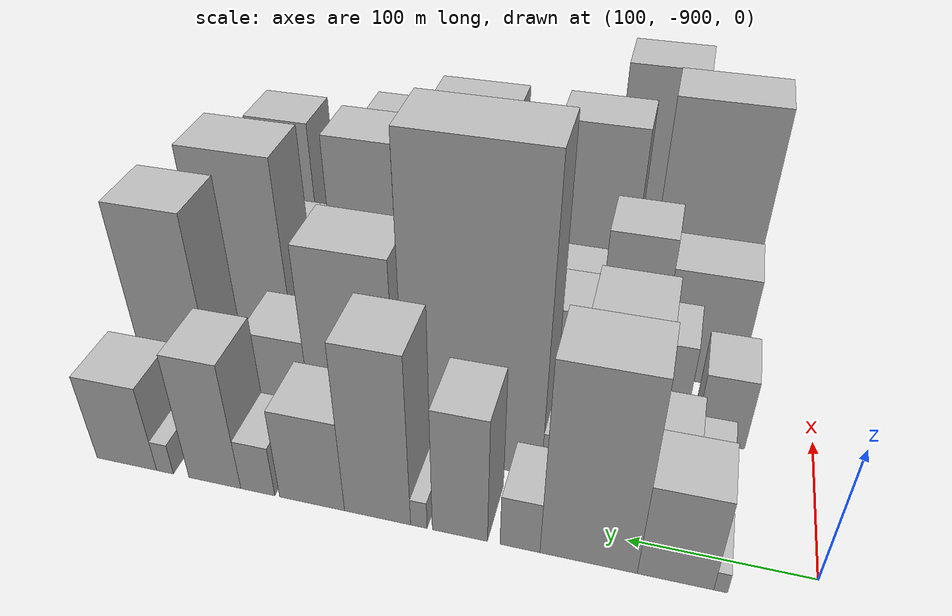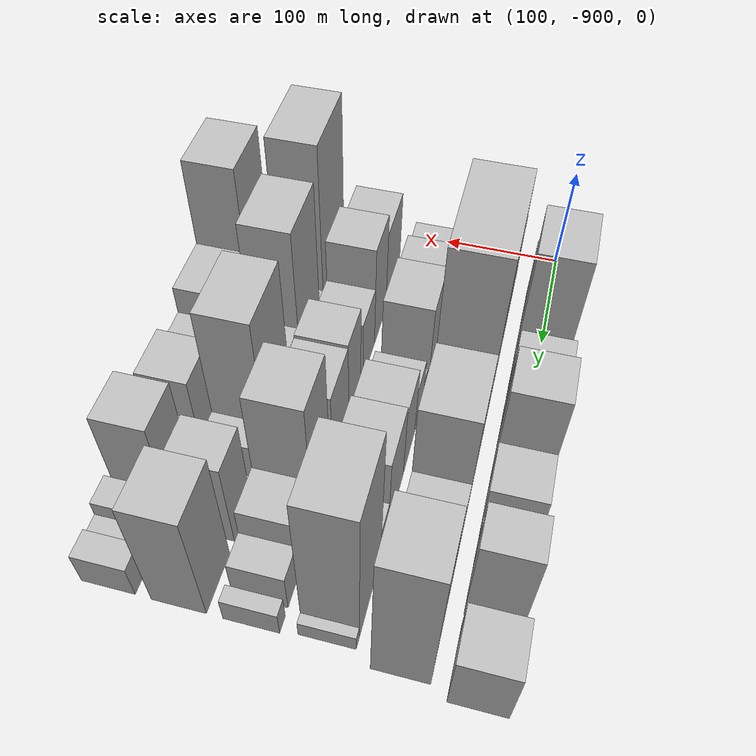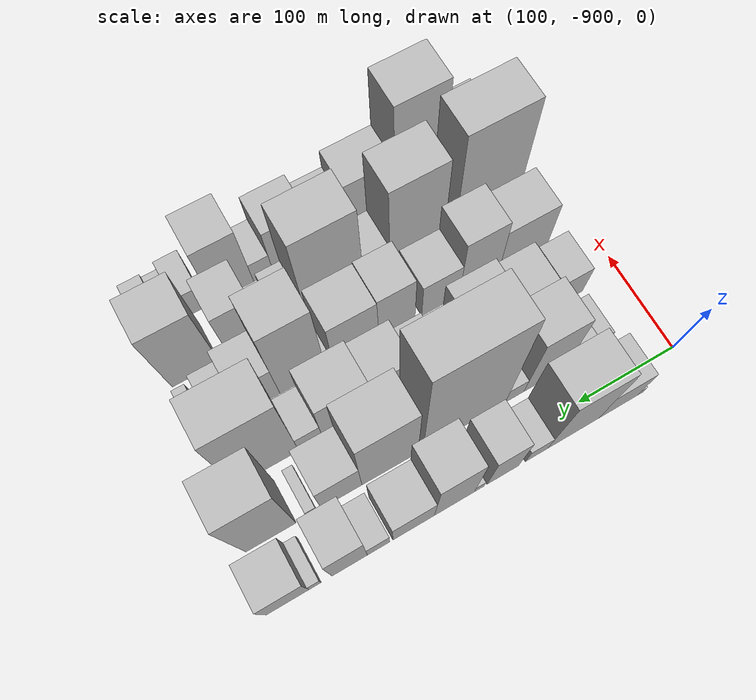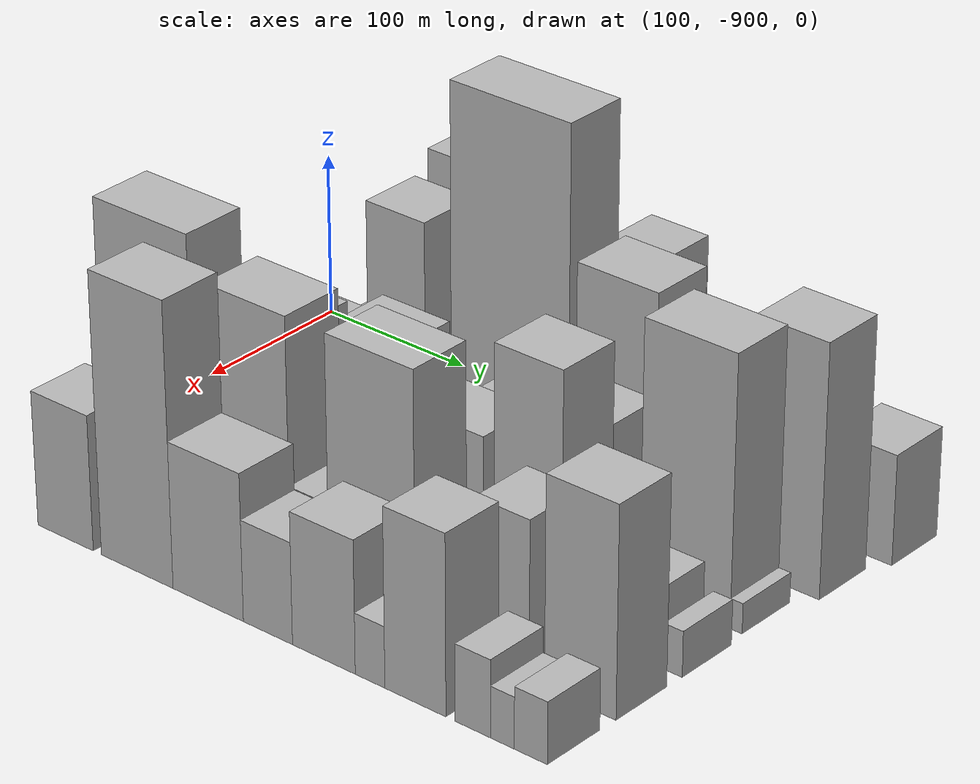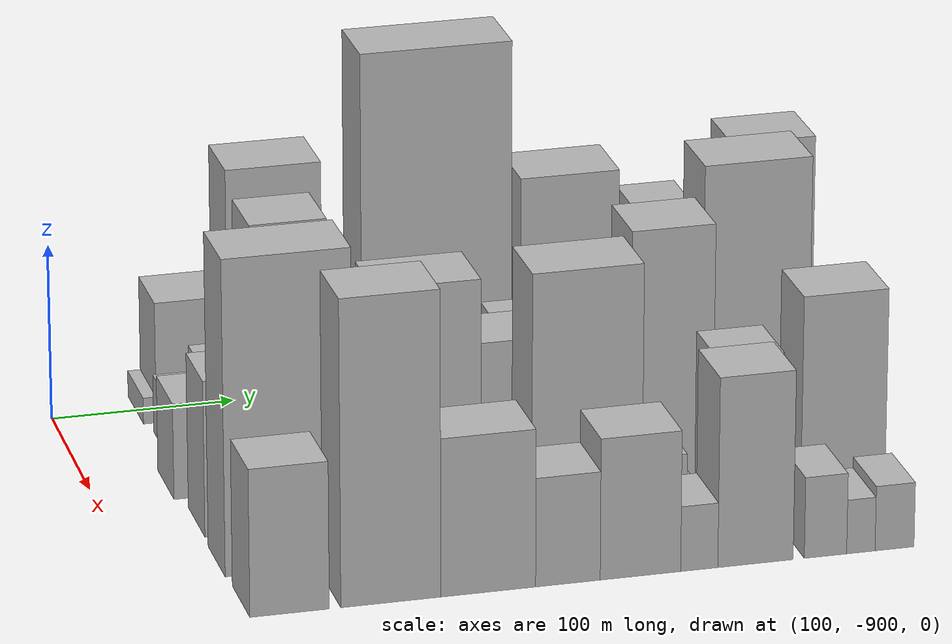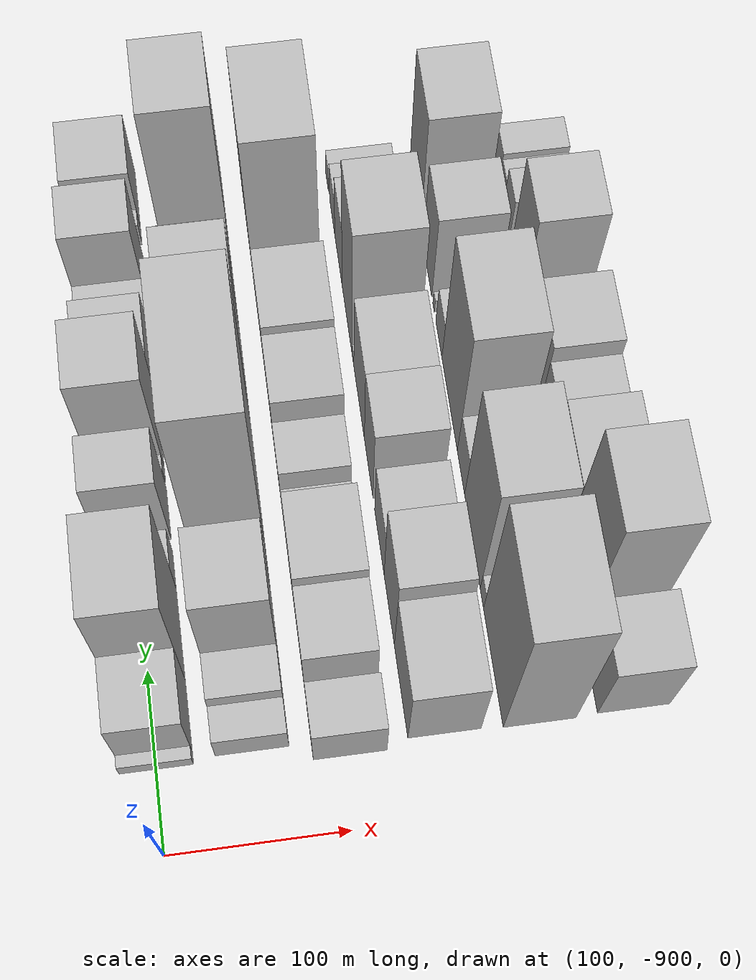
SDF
<sdf version="1.6">
 <world name="default">
  <model name="building_1">
   <static>1</static>
   <pose>100.0000 -850.4928 0 0.000000 0.000000 0.000000</pose>
   <link name="link">
    <pose>0 0 7.50 0 0 0</pose>
    <collision name="collision"><geometry><box><size>40.0000 7.0145 15.0000</size></box></geometry></collision>
    <visual name="visual">
     <cast_shadows>0</cast_shadows>
     <geometry><box><size>40.0000 7.0145 15.0000</size></box></geometry>
     <material>
      <script>
       <uri>model://HANNAS_wall/materials/scripts</uri>
       <uri>model://HANNAS_wall/materials/textures</uri>
       <name>vrc/HANNAS_wall</name>
      </script>
     </material>
    </visual>
   </link>
  </model>
  <model name="building_2">
   <static>1</static>
   <pose>100.0000 -827.1640 0 0.000000 0.000000 0.000000</pose>
   <link name="link">
    <pose>0 0 34.50 0 0 0</pose>
    <collision name="collision"><geometry><box><size>40.0000 39.6430 69.0000</size></box></geometry></collision>
    <visual name="visual">
     <cast_shadows>0</cast_shadows>
     <geometry><box><size>40.0000 39.6430 69.0000</size></box></geometry>
     <material>
      <script>
       <uri>model://HANNAS_wall/materials/scripts</uri>
       <uri>model://HANNAS_wall/materials/textures</uri>
       <name>vrc/HANNAS_wall</name>
      </script>
     </material>
    </visual>
   </link>
  </model>
  <model name="building_3">
   <static>1</static>
   <pose>100.0000 -781.2033 0 0.000000 0.000000 0.000000</pose>
   <link name="link">
    <pose>0 0 70.50 0 0 0</pose>
    <collision name="collision"><geometry><box><size>40.0000 52.2784 141.0000</size></box></geometry></collision>
    <visual name="visual">
     <cast_shadows>0</cast_shadows>
     <geometry><box><size>40.0000 52.2784 141.0000</size></box></geometry>
     <material>
      <script>
       <uri>model://HANNAS_wall/materials/scripts</uri>
       <uri>model://HANNAS_wall/materials/textures</uri>
       <name>vrc/HANNAS_wall</name>
      </script>
     </material>
    </visual>
   </link>
  </model>
  <model name="building_4">
   <static>1</static>
   <pose>100.0000 -744.0244 0 0.000000 0.000000 0.000000</pose>
   <link name="link">
    <pose>0 0 19.50 0 0 0</pose>
    <collision name="collision"><geometry><box><size>40.0000 22.0794 39.0000</size></box></geometry></collision>
    <visual name="visual">
     <cast_shadows>0</cast_shadows>
     <geometry><box><size>40.0000 22.0794 39.0000</size></box></geometry>
     <material>
      <script>
       <uri>model://HANNAS_wall/materials/scripts</uri>
       <uri>model://HANNAS_wall/materials/textures</uri>
       <name>vrc/HANNAS_wall</name>
      </script>
     </material>
    </visual>
   </link>
  </model>
  <model name="building_5">
   <static>1</static>
   <pose>100.0000 -710.3621 0 0.000000 0.000000 0.000000</pose>
   <link name="link">
    <pose>0 0 46.50 0 0 0</pose>
    <collision name="collision"><geometry><box><size>40.0000 31.2453 93.0000</size></box></geometry></collision>
    <visual name="visual">
     <cast_shadows>0</cast_shadows>
     <geometry><box><size>40.0000 31.2453 93.0000</size></box></geometry>
     <material>
      <script>
       <uri>model://HANNAS_wall/materials/scripts</uri>
       <uri>model://HANNAS_wall/materials/textures</uri>
       <name>vrc/HANNAS_wall</name>
      </script>
     </material>
    </visual>
   </link>
  </model>
  <model name="building_6">
   <static>1</static>
   <pose>100.0000 -686.9889 0 0.000000 0.000000 0.000000</pose>
   <link name="link">
    <pose>0 0 10.50 0 0 0</pose>
    <collision name="collision"><geometry><box><size>40.0000 9.5010 21.0000</size></box></geometry></collision>
    <visual name="visual">
     <cast_shadows>0</cast_shadows>
     <geometry><box><size>40.0000 9.5010 21.0000</size></box></geometry>
     <material>
      <script>
       <uri>model://HANNAS_wall/materials/scripts</uri>
       <uri>model://HANNAS_wall/materials/textures</uri>
       <name>vrc/HANNAS_wall</name>
      </script>
     </material>
    </visual>
   </link>
  </model>
  <model name="building_7">
   <static>1</static>
   <pose>100.0000 -662.8054 0 0.000000 0.000000 0.000000</pose>
   <link name="link">
    <pose>0 0 63.00 0 0 0</pose>
    <collision name="collision"><geometry><box><size>40.0000 38.8661 126.0000</size></box></geometry></collision>
    <visual name="visual">
     <cast_shadows>0</cast_shadows>
     <geometry><box><size>40.0000 38.8661 126.0000</size></box></geometry>
     <material>
      <script>
       <uri>model://HANNAS_wall/materials/scripts</uri>
       <uri>model://HANNAS_wall/materials/textures</uri>
       <name>vrc/HANNAS_wall</name>
      </script>
     </material>
    </visual>
   </link>
  </model>
  <model name="building_8">
   <static>1</static>
   <pose>100.0000 -623.7122 0 0.000000 0.000000 0.000000</pose>
   <link name="link">
    <pose>0 0 34.50 0 0 0</pose>
    <collision name="collision"><geometry><box><size>40.0000 39.3204 69.0000</size></box></geometry></collision>
    <visual name="visual">
     <cast_shadows>0</cast_shadows>
     <geometry><box><size>40.0000 39.3204 69.0000</size></box></geometry>
     <material>
      <script>
       <uri>model://HANNAS_wall/materials/scripts</uri>
       <uri>model://HANNAS_wall/materials/textures</uri>
       <name>vrc/HANNAS_wall</name>
      </script>
     </material>
    </visual>
   </link>
  </model>
  <model name="building_9">
   <static>1</static>
   <pose>100.0000 -590.5228 0 0.000000 0.000000 0.000000</pose>
   <link name="link">
    <pose>0 0 19.50 0 0 0</pose>
    <collision name="collision"><geometry><box><size>40.0000 21.0584 39.0000</size></box></geometry></collision>
    <visual name="visual">
     <cast_shadows>0</cast_shadows>
     <geometry><box><size>40.0000 21.0584 39.0000</size></box></geometry>
     <material>
      <script>
       <uri>model://HANNAS_wall/materials/scripts</uri>
       <uri>model://HANNAS_wall/materials/textures</uri>
       <name>vrc/HANNAS_wall</name>
      </script>
     </material>
    </visual>
   </link>
  </model>
  <model name="building_10">
   <static>1</static>
   <pose>100.0000 -563.5756 0 0.000000 0.000000 0.000000</pose>
   <link name="link">
    <pose>0 0 48.00 0 0 0</pose>
    <collision name="collision"><geometry><box><size>40.0000 32.8358 96.0000</size></box></geometry></collision>
    <visual name="visual">
     <cast_shadows>0</cast_shadows>
     <geometry><box><size>40.0000 32.8358 96.0000</size></box></geometry>
     <material>
      <script>
       <uri>model://HANNAS_wall/materials/scripts</uri>
       <uri>model://HANNAS_wall/materials/textures</uri>
       <name>vrc/HANNAS_wall</name>
      </script>
     </material>
    </visual>
   </link>
  </model>
  <model name="building_11">
   <static>1</static>
   <pose>100.0000 -531.7365 0 0.000000 0.000000 0.000000</pose>
   <link name="link">
    <pose>0 0 12.00 0 0 0</pose>
    <collision name="collision"><geometry><box><size>40.0000 10.8425 24.0000</size></box></geometry></collision>
    <visual name="visual">
     <cast_shadows>0</cast_shadows>
     <geometry><box><size>40.0000 10.8425 24.0000</size></box></geometry>
     <material>
      <script>
       <uri>model://HANNAS_wall/materials/scripts</uri>
       <uri>model://HANNAS_wall/materials/textures</uri>
       <name>vrc/HANNAS_wall</name>
      </script>
     </material>
    </visual>
   </link>
  </model>
  <model name="building_12">
   <static>1</static>
   <pose>100.0000 -506.7196 0 0.000000 0.000000 0.000000</pose>
   <link name="link">
    <pose>0 0 33.00 0 0 0</pose>
    <collision name="collision"><geometry><box><size>40.0000 39.1913 66.0000</size></box></geometry></collision>
    <visual name="visual">
     <cast_shadows>0</cast_shadows>
     <geometry><box><size>40.0000 39.1913 66.0000</size></box></geometry>
     <material>
      <script>
       <uri>model://HANNAS_wall/materials/scripts</uri>
       <uri>model://HANNAS_wall/materials/textures</uri>
       <name>vrc/HANNAS_wall</name>
      </script>
     </material>
    </visual>
   </link>
  </model>
  <model name="building_58">
   <static>1</static>
   <pose>152.0000 -841.1821 0 0.000000 0.000000 0.000000</pose>
   <link name="link">
    <pose>0 0 16.50 0 0 0</pose>
    <collision name="collision"><geometry><box><size>40.0000 19.6358 33.0000</size></box></geometry></collision>
    <visual name="visual">
     <cast_shadows>0</cast_shadows>
     <geometry><box><size>40.0000 19.6358 33.0000</size></box></geometry>
     <material>
      <script>
       <uri>model://HANNAS_wall/materials/scripts</uri>
       <uri>model://HANNAS_wall/materials/textures</uri>
       <name>vrc/HANNAS_wall</name>
      </script>
     </material>
    </visual>
   </link>
  </model>
  <model name="building_59">
   <static>1</static>
   <pose>152.0000 -818.9174 0 0.000000 0.000000 0.000000</pose>
   <link name="link">
    <pose>0 0 24.00 0 0 0</pose>
    <collision name="collision"><geometry><box><size>40.0000 24.8937 48.0000</size></box></geometry></collision>
    <visual name="visual">
     <cast_shadows>0</cast_shadows>
     <geometry><box><size>40.0000 24.8937 48.0000</size></box></geometry>
     <material>
      <script>
       <uri>model://HANNAS_wall/materials/scripts</uri>
       <uri>model://HANNAS_wall/materials/textures</uri>
       <name>vrc/HANNAS_wall</name>
      </script>
     </material>
    </visual>
   </link>
  </model>
  <model name="building_60">
   <static>1</static>
   <pose>152.0000 -785.4999 0 0.000000 0.000000 0.000000</pose>
   <link name="link">
    <pose>0 0 64.50 0 0 0</pose>
    <collision name="collision"><geometry><box><size>40.0000 41.9413 129.0000</size></box></geometry></collision>
    <visual name="visual">
     <cast_shadows>0</cast_shadows>
     <geometry><box><size>40.0000 41.9413 129.0000</size></box></geometry>
     <material>
      <script>
       <uri>model://HANNAS_wall/materials/scripts</uri>
       <uri>model://HANNAS_wall/materials/textures</uri>
       <name>vrc/HANNAS_wall</name>
      </script>
     </material>
    </visual>
   </link>
  </model>
  <model name="building_61">
   <static>1</static>
   <pose>152.0000 -755.1609 0 0.000000 0.000000 0.000000</pose>
   <link name="link">
    <pose>0 0 18.00 0 0 0</pose>
    <collision name="collision"><geometry><box><size>40.0000 18.7368 36.0000</size></box></geometry></collision>
    <visual name="visual">
     <cast_shadows>0</cast_shadows>
     <geometry><box><size>40.0000 18.7368 36.0000</size></box></geometry>
     <material>
      <script>
       <uri>model://HANNAS_wall/materials/scripts</uri>
       <uri>model://HANNAS_wall/materials/textures</uri>
       <name>vrc/HANNAS_wall</name>
      </script>
     </material>
    </visual>
   </link>
  </model>
  <model name="building_62">
   <static>1</static>
   <pose>152.0000 -704.5812 0 0.000000 0.000000 0.000000</pose>
   <link name="link">
    <pose>0 0 109.50 0 0 0</pose>
    <collision name="collision"><geometry><box><size>40.0000 82.4225 219.0000</size></box></geometry></collision>
    <visual name="visual">
     <cast_shadows>0</cast_shadows>
     <geometry><box><size>40.0000 82.4225 219.0000</size></box></geometry>
     <material>
      <script>
       <uri>model://HANNAS_wall/materials/scripts</uri>
       <uri>model://HANNAS_wall/materials/textures</uri>
       <name>vrc/HANNAS_wall</name>
      </script>
     </material>
    </visual>
   </link>
  </model>
  <model name="building_63">
   <static>1</static>
   <pose>152.0000 -631.2233 0 0.000000 0.000000 0.000000</pose>
   <link name="link">
    <pose>0 0 70.50 0 0 0</pose>
    <collision name="collision"><geometry><box><size>40.0000 54.2934 141.0000</size></box></geometry></collision>
    <visual name="visual">
     <cast_shadows>0</cast_shadows>
     <geometry><box><size>40.0000 54.2934 141.0000</size></box></geometry>
     <material>
      <script>
       <uri>model://HANNAS_wall/materials/scripts</uri>
       <uri>model://HANNAS_wall/materials/textures</uri>
       <name>vrc/HANNAS_wall</name>
      </script>
     </material>
    </visual>
   </link>
  </model>
  <model name="building_64">
   <static>1</static>
   <pose>152.0000 -584.7914 0 0.000000 0.000000 0.000000</pose>
   <link name="link">
    <pose>0 0 36.00 0 0 0</pose>
    <collision name="collision"><geometry><box><size>40.0000 38.5706 72.0000</size></box></geometry></collision>
    <visual name="visual">
     <cast_shadows>0</cast_shadows>
     <geometry><box><size>40.0000 38.5706 72.0000</size></box></geometry>
     <material>
      <script>
       <uri>model://HANNAS_wall/materials/scripts</uri>
       <uri>model://HANNAS_wall/materials/textures</uri>
       <name>vrc/HANNAS_wall</name>
      </script>
     </material>
    </visual>
   </link>
  </model>
  <model name="building_65">
   <static>1</static>
   <pose>152.0000 -556.7208 0 0.000000 0.000000 0.000000</pose>
   <link name="link">
    <pose>0 0 10.50 0 0 0</pose>
    <collision name="collision"><geometry><box><size>40.0000 9.5705 21.0000</size></box></geometry></collision>
    <visual name="visual">
     <cast_shadows>0</cast_shadows>
     <geometry><box><size>40.0000 9.5705 21.0000</size></box></geometry>
     <material>
      <script>
       <uri>model://HANNAS_wall/materials/scripts</uri>
       <uri>model://HANNAS_wall/materials/textures</uri>
       <name>vrc/HANNAS_wall</name>
      </script>
     </material>
    </visual>
   </link>
  </model>
  <model name="building_66">
   <static>1</static>
   <pose>152.0000 -518.6383 0 0.000000 0.000000 0.000000</pose>
   <link name="link">
    <pose>0 0 75.00 0 0 0</pose>
    <collision name="collision"><geometry><box><size>40.0000 46.5944 150.0000</size></box></geometry></collision>
    <visual name="visual">
     <cast_shadows>0</cast_shadows>
     <geometry><box><size>40.0000 46.5944 150.0000</size></box></geometry>
     <material>
      <script>
       <uri>model://HANNAS_wall/materials/scripts</uri>
       <uri>model://HANNAS_wall/materials/textures</uri>
       <name>vrc/HANNAS_wall</name>
      </script>
     </material>
    </visual>
   </link>
  </model>
  <model name="building_100">
   <static>1</static>
   <pose>204.0000 -845.1607 0 0.000000 0.000000 0.000000</pose>
   <link name="link">
    <pose>0 0 27.00 0 0 0</pose>
    <collision name="collision"><geometry><box><size>40.0000 29.6786 54.0000</size></box></geometry></collision>
    <visual name="visual">
     <cast_shadows>0</cast_shadows>
     <geometry><box><size>40.0000 29.6786 54.0000</size></box></geometry>
     <material>
      <script>
       <uri>model://HANNAS_wall/materials/scripts</uri>
       <uri>model://HANNAS_wall/materials/textures</uri>
       <name>vrc/HANNAS_wall</name>
      </script>
     </material>
    </visual>
   </link>
  </model>
  <model name="building_101">
   <static>1</static>
   <pose>204.0000 -803.6452 0 0.000000 0.000000 0.000000</pose>
   <link name="link">
    <pose>0 0 36.00 0 0 0</pose>
    <collision name="collision"><geometry><box><size>40.0000 39.3524 72.0000</size></box></geometry></collision>
    <visual name="visual">
     <cast_shadows>0</cast_shadows>
     <geometry><box><size>40.0000 39.3524 72.0000</size></box></geometry>
     <material>
      <script>
       <uri>model://HANNAS_wall/materials/scripts</uri>
       <uri>model://HANNAS_wall/materials/textures</uri>
       <name>vrc/HANNAS_wall</name>
      </script>
     </material>
    </visual>
   </link>
  </model>
  <model name="building_102">
   <static>1</static>
   <pose>204.0000 -760.1227 0 0.000000 0.000000 0.000000</pose>
   <link name="link">
    <pose>0 0 42.00 0 0 0</pose>
    <collision name="collision"><geometry><box><size>40.0000 47.6925 84.0000</size></box></geometry></collision>
    <visual name="visual">
     <cast_shadows>0</cast_shadows>
     <geometry><box><size>40.0000 47.6925 84.0000</size></box></geometry>
     <material>
      <script>
       <uri>model://HANNAS_wall/materials/scripts</uri>
       <uri>model://HANNAS_wall/materials/textures</uri>
       <name>vrc/HANNAS_wall</name>
      </script>
     </material>
    </visual>
   </link>
  </model>
  <model name="building_103">
   <static>1</static>
   <pose>204.0000 -720.1710 0 0.000000 0.000000 0.000000</pose>
   <link name="link">
    <pose>0 0 13.50 0 0 0</pose>
    <collision name="collision"><geometry><box><size>40.0000 12.2110 27.0000</size></box></geometry></collision>
    <visual name="visual">
     <cast_shadows>0</cast_shadows>
     <geometry><box><size>40.0000 12.2110 27.0000</size></box></geometry>
     <material>
      <script>
       <uri>model://HANNAS_wall/materials/scripts</uri>
       <uri>model://HANNAS_wall/materials/textures</uri>
       <name>vrc/HANNAS_wall</name>
      </script>
     </material>
    </visual>
   </link>
  </model>
  <model name="building_104">
   <static>1</static>
   <pose>204.0000 -698.7889 0 0.000000 0.000000 0.000000</pose>
   <link name="link">
    <pose>0 0 25.50 0 0 0</pose>
    <collision name="collision"><geometry><box><size>40.0000 30.5532 51.0000</size></box></geometry></collision>
    <visual name="visual">
     <cast_shadows>0</cast_shadows>
     <geometry><box><size>40.0000 30.5532 51.0000</size></box></geometry>
     <material>
      <script>
       <uri>model://HANNAS_wall/materials/scripts</uri>
       <uri>model://HANNAS_wall/materials/textures</uri>
       <name>vrc/HANNAS_wall</name>
      </script>
     </material>
    </visual>
   </link>
  </model>
  <model name="building_105">
   <static>1</static>
   <pose>204.0000 -663.2762 0 0.000000 0.000000 0.000000</pose>
   <link name="link">
    <pose>0 0 39.00 0 0 0</pose>
    <collision name="collision"><geometry><box><size>40.0000 40.4722 78.0000</size></box></geometry></collision>
    <visual name="visual">
     <cast_shadows>0</cast_shadows>
     <geometry><box><size>40.0000 40.4722 78.0000</size></box></geometry>
     <material>
      <script>
       <uri>model://HANNAS_wall/materials/scripts</uri>
       <uri>model://HANNAS_wall/materials/textures</uri>
       <name>vrc/HANNAS_wall</name>
      </script>
     </material>
    </visual>
   </link>
  </model>
  <model name="building_106">
   <static>1</static>
   <pose>204.0000 -619.0146 0 0.000000 0.000000 0.000000</pose>
   <link name="link">
    <pose>0 0 43.50 0 0 0</pose>
    <collision name="collision"><geometry><box><size>40.0000 48.0511 87.0000</size></box></geometry></collision>
    <visual name="visual">
     <cast_shadows>0</cast_shadows>
     <geometry><box><size>40.0000 48.0511 87.0000</size></box></geometry>
     <material>
      <script>
       <uri>model://HANNAS_wall/materials/scripts</uri>
       <uri>model://HANNAS_wall/materials/textures</uri>
       <name>vrc/HANNAS_wall</name>
      </script>
     </material>
    </visual>
   </link>
  </model>
  <model name="building_107">
   <static>1</static>
   <pose>204.0000 -583.5288 0 0.000000 0.000000 0.000000</pose>
   <link name="link">
    <pose>0 0 19.50 0 0 0</pose>
    <collision name="collision"><geometry><box><size>40.0000 22.9205 39.0000</size></box></geometry></collision>
    <visual name="visual">
     <cast_shadows>0</cast_shadows>
     <geometry><box><size>40.0000 22.9205 39.0000</size></box></geometry>
     <material>
      <script>
       <uri>model://HANNAS_wall/materials/scripts</uri>
       <uri>model://HANNAS_wall/materials/textures</uri>
       <name>vrc/HANNAS_wall</name>
      </script>
     </material>
    </visual>
   </link>
  </model>
  <model name="building_108">
   <static>1</static>
   <pose>204.0000 -542.5219 0 0.000000 0.000000 0.000000</pose>
   <link name="link">
    <pose>0 0 79.50 0 0 0</pose>
    <collision name="collision"><geometry><box><size>40.0000 59.0932 159.0000</size></box></geometry></collision>
    <visual name="visual">
     <cast_shadows>0</cast_shadows>
     <geometry><box><size>40.0000 59.0932 159.0000</size></box></geometry>
     <material>
      <script>
       <uri>model://HANNAS_wall/materials/scripts</uri>
       <uri>model://HANNAS_wall/materials/textures</uri>
       <name>vrc/HANNAS_wall</name>
      </script>
     </material>
    </visual>
   </link>
  </model>
  <model name="building_109">
   <static>1</static>
   <pose>204.0000 -509.1160 0 0.000000 0.000000 0.000000</pose>
   <link name="link">
    <pose>0 0 9.00 0 0 0</pose>
    <collision name="collision"><geometry><box><size>40.0000 7.7186 18.0000</size></box></geometry></collision>
    <visual name="visual">
     <cast_shadows>0</cast_shadows>
     <geometry><box><size>40.0000 7.7186 18.0000</size></box></geometry>
     <material>
      <script>
       <uri>model://HANNAS_wall/materials/scripts</uri>
       <uri>model://HANNAS_wall/materials/textures</uri>
       <name>vrc/HANNAS_wall</name>
      </script>
     </material>
    </visual>
   </link>
  </model>
  <model name="building_151">
   <static>1</static>
   <pose>256.0000 -829.1859 0 0.000000 0.000000 0.000000</pose>
   <link name="link">
    <pose>0 0 43.50 0 0 0</pose>
    <collision name="collision"><geometry><box><size>40.0000 51.6282 87.0000</size></box></geometry></collision>
    <visual name="visual">
     <cast_shadows>0</cast_shadows>
     <geometry><box><size>40.0000 51.6282 87.0000</size></box></geometry>
     <material>
      <script>
       <uri>model://HANNAS_wall/materials/scripts</uri>
       <uri>model://HANNAS_wall/materials/textures</uri>
       <name>vrc/HANNAS_wall</name>
      </script>
     </material>
    </visual>
   </link>
  </model>
  <model name="building_152">
   <static>1</static>
   <pose>256.0000 -782.8693 0 0.000000 0.000000 0.000000</pose>
   <link name="link">
    <pose>0 0 54.00 0 0 0</pose>
    <collision name="collision"><geometry><box><size>40.0000 41.0049 108.0000</size></box></geometry></collision>
    <visual name="visual">
     <cast_shadows>0</cast_shadows>
     <geometry><box><size>40.0000 41.0049 108.0000</size></box></geometry>
     <material>
      <script>
       <uri>model://HANNAS_wall/materials/scripts</uri>
       <uri>model://HANNAS_wall/materials/textures</uri>
       <name>vrc/HANNAS_wall</name>
      </script>
     </material>
    </visual>
   </link>
  </model>
  <model name="building_153">
   <static>1</static>
   <pose>256.0000 -742.8651 0 0.000000 0.000000 0.000000</pose>
   <link name="link">
    <pose>0 0 33.00 0 0 0</pose>
    <collision name="collision"><geometry><box><size>40.0000 39.0035 66.0000</size></box></geometry></collision>
    <visual name="visual">
     <cast_shadows>0</cast_shadows>
     <geometry><box><size>40.0000 39.0035 66.0000</size></box></geometry>
     <material>
      <script>
       <uri>model://HANNAS_wall/materials/scripts</uri>
       <uri>model://HANNAS_wall/materials/textures</uri>
       <name>vrc/HANNAS_wall</name>
      </script>
     </material>
    </visual>
   </link>
  </model>
  <model name="building_154">
   <static>1</static>
   <pose>256.0000 -698.0895 0 0.000000 0.000000 0.000000</pose>
   <link name="link">
    <pose>0 0 46.50 0 0 0</pose>
    <collision name="collision"><geometry><box><size>40.0000 36.5478 93.0000</size></box></geometry></collision>
    <visual name="visual">
     <cast_shadows>0</cast_shadows>
     <geometry><box><size>40.0000 36.5478 93.0000</size></box></geometry>
     <material>
      <script>
       <uri>model://HANNAS_wall/materials/scripts</uri>
       <uri>model://HANNAS_wall/materials/textures</uri>
       <name>vrc/HANNAS_wall</name>
      </script>
     </material>
    </visual>
   </link>
  </model>
  <model name="building_155">
   <static>1</static>
   <pose>256.0000 -656.7595 0 0.000000 0.000000 0.000000</pose>
   <link name="link">
    <pose>0 0 45.00 0 0 0</pose>
    <collision name="collision"><geometry><box><size>40.0000 46.1121 90.0000</size></box></geometry></collision>
    <visual name="visual">
     <cast_shadows>0</cast_shadows>
     <geometry><box><size>40.0000 46.1121 90.0000</size></box></geometry>
     <material>
      <script>
       <uri>model://HANNAS_wall/materials/scripts</uri>
       <uri>model://HANNAS_wall/materials/textures</uri>
       <name>vrc/HANNAS_wall</name>
      </script>
     </material>
    </visual>
   </link>
  </model>
  <model name="building_156">
   <static>1</static>
   <pose>256.0000 -630.0494 0 0.000000 0.000000 0.000000</pose>
   <link name="link">
    <pose>0 0 7.50 0 0 0</pose>
    <collision name="collision"><geometry><box><size>40.0000 7.3081 15.0000</size></box></geometry></collision>
    <visual name="visual">
     <cast_shadows>0</cast_shadows>
     <geometry><box><size>40.0000 7.3081 15.0000</size></box></geometry>
     <material>
      <script>
       <uri>model://HANNAS_wall/materials/scripts</uri>
       <uri>model://HANNAS_wall/materials/textures</uri>
       <name>vrc/HANNAS_wall</name>
      </script>
     </material>
    </visual>
   </link>
  </model>
  <model name="building_157">
   <static>1</static>
   <pose>256.0000 -603.8853 0 0.000000 0.000000 0.000000</pose>
   <link name="link">
    <pose>0 0 73.50 0 0 0</pose>
    <collision name="collision"><geometry><box><size>40.0000 45.0200 147.0000</size></box></geometry></collision>
    <visual name="visual">
     <cast_shadows>0</cast_shadows>
     <geometry><box><size>40.0000 45.0200 147.0000</size></box></geometry>
     <material>
      <script>
       <uri>model://HANNAS_wall/materials/scripts</uri>
       <uri>model://HANNAS_wall/materials/textures</uri>
       <name>vrc/HANNAS_wall</name>
      </script>
     </material>
    </visual>
   </link>
  </model>
  <model name="building_158">
   <static>1</static>
   <pose>256.0000 -563.8449 0 0.000000 0.000000 0.000000</pose>
   <link name="link">
    <pose>0 0 34.50 0 0 0</pose>
    <collision name="collision"><geometry><box><size>40.0000 35.0607 69.0000</size></box></geometry></collision>
    <visual name="visual">
     <cast_shadows>0</cast_shadows>
     <geometry><box><size>40.0000 35.0607 69.0000</size></box></geometry>
     <material>
      <script>
       <uri>model://HANNAS_wall/materials/scripts</uri>
       <uri>model://HANNAS_wall/materials/textures</uri>
       <name>vrc/HANNAS_wall</name>
      </script>
     </material>
    </visual>
   </link>
  </model>
  <model name="building_159">
   <static>1</static>
   <pose>256.0000 -533.7588 0 0.000000 0.000000 0.000000</pose>
   <link name="link">
    <pose>0 0 21.00 0 0 0</pose>
    <collision name="collision"><geometry><box><size>40.0000 25.1114 42.0000</size></box></geometry></collision>
    <visual name="visual">
     <cast_shadows>0</cast_shadows>
     <geometry><box><size>40.0000 25.1114 42.0000</size></box></geometry>
     <material>
      <script>
       <uri>model://HANNAS_wall/materials/scripts</uri>
       <uri>model://HANNAS_wall/materials/textures</uri>
       <name>vrc/HANNAS_wall</name>
      </script>
     </material>
    </visual>
   </link>
  </model>
  <model name="building_160">
   <static>1</static>
   <pose>256.0000 -509.0334 0 0.000000 0.000000 0.000000</pose>
   <link name="link">
    <pose>0 0 13.50 0 0 0</pose>
    <collision name="collision"><geometry><box><size>40.0000 12.3395 27.0000</size></box></geometry></collision>
    <visual name="visual">
     <cast_shadows>0</cast_shadows>
     <geometry><box><size>40.0000 12.3395 27.0000</size></box></geometry>
     <material>
      <script>
       <uri>model://HANNAS_wall/materials/scripts</uri>
       <uri>model://HANNAS_wall/materials/textures</uri>
       <name>vrc/HANNAS_wall</name>
      </script>
     </material>
    </visual>
   </link>
  </model>
  <model name="building_200">
   <static>1</static>
   <pose>308.0000 -822.4333 0 0.000000 0.000000 0.000000</pose>
   <link name="link">
    <pose>0 0 87.00 0 0 0</pose>
    <collision name="collision"><geometry><box><size>40.0000 67.1333 174.0000</size></box></geometry></collision>
    <visual name="visual">
     <cast_shadows>0</cast_shadows>
     <geometry><box><size>40.0000 67.1333 174.0000</size></box></geometry>
     <material>
      <script>
       <uri>model://HANNAS_wall/materials/scripts</uri>
       <uri>model://HANNAS_wall/materials/textures</uri>
       <name>vrc/HANNAS_wall</name>
      </script>
     </material>
    </visual>
   </link>
  </model>
  <model name="building_201">
   <static>1</static>
   <pose>308.0000 -782.9852 0 0.000000 0.000000 0.000000</pose>
   <link name="link">
    <pose>0 0 12.00 0 0 0</pose>
    <collision name="collision"><geometry><box><size>40.0000 11.7629 24.0000</size></box></geometry></collision>
    <visual name="visual">
     <cast_shadows>0</cast_shadows>
     <geometry><box><size>40.0000 11.7629 24.0000</size></box></geometry>
     <material>
      <script>
       <uri>model://HANNAS_wall/materials/scripts</uri>
       <uri>model://HANNAS_wall/materials/textures</uri>
       <name>vrc/HANNAS_wall</name>
      </script>
     </material>
    </visual>
   </link>
  </model>
  <model name="building_202">
   <static>1</static>
   <pose>308.0000 -749.0475 0 0.000000 0.000000 0.000000</pose>
   <link name="link">
    <pose>0 0 75.00 0 0 0</pose>
    <collision name="collision"><geometry><box><size>40.0000 56.1124 150.0000</size></box></geometry></collision>
    <visual name="visual">
     <cast_shadows>0</cast_shadows>
     <geometry><box><size>40.0000 56.1124 150.0000</size></box></geometry>
     <material>
      <script>
       <uri>model://HANNAS_wall/materials/scripts</uri>
       <uri>model://HANNAS_wall/materials/textures</uri>
       <name>vrc/HANNAS_wall</name>
      </script>
     </material>
    </visual>
   </link>
  </model>
  <model name="building_203">
   <static>1</static>
   <pose>308.0000 -707.4397 0 0.000000 0.000000 0.000000</pose>
   <link name="link">
    <pose>0 0 25.50 0 0 0</pose>
    <collision name="collision"><geometry><box><size>40.0000 27.1031 51.0000</size></box></geometry></collision>
    <visual name="visual">
     <cast_shadows>0</cast_shadows>
     <geometry><box><size>40.0000 27.1031 51.0000</size></box></geometry>
     <material>
      <script>
       <uri>model://HANNAS_wall/materials/scripts</uri>
       <uri>model://HANNAS_wall/materials/textures</uri>
       <name>vrc/HANNAS_wall</name>
      </script>
     </material>
    </visual>
   </link>
  </model>
  <model name="building_204">
   <static>1</static>
   <pose>308.0000 -664.3437 0 0.000000 0.000000 0.000000</pose>
   <link name="link">
    <pose>0 0 75.00 0 0 0</pose>
    <collision name="collision"><geometry><box><size>40.0000 59.0890 150.0000</size></box></geometry></collision>
    <visual name="visual">
     <cast_shadows>0</cast_shadows>
     <geometry><box><size>40.0000 59.0890 150.0000</size></box></geometry>
     <material>
      <script>
       <uri>model://HANNAS_wall/materials/scripts</uri>
       <uri>model://HANNAS_wall/materials/textures</uri>
       <name>vrc/HANNAS_wall</name>
      </script>
     </material>
    </visual>
   </link>
  </model>
  <model name="building_205">
   <static>1</static>
   <pose>308.0000 -622.7831 0 0.000000 0.000000 0.000000</pose>
   <link name="link">
    <pose>0 0 21.00 0 0 0</pose>
    <collision name="collision"><geometry><box><size>40.0000 24.0322 42.0000</size></box></geometry></collision>
    <visual name="visual">
     <cast_shadows>0</cast_shadows>
     <geometry><box><size>40.0000 24.0322 42.0000</size></box></geometry>
     <material>
      <script>
       <uri>model://HANNAS_wall/materials/scripts</uri>
       <uri>model://HANNAS_wall/materials/textures</uri>
       <name>vrc/HANNAS_wall</name>
      </script>
     </material>
    </visual>
   </link>
  </model>
  <model name="building_206">
   <static>1</static>
   <pose>308.0000 -601.7361 0 0.000000 0.000000 0.000000</pose>
   <link name="link">
    <pose>0 0 7.50 0 0 0</pose>
    <collision name="collision"><geometry><box><size>40.0000 6.0618 15.0000</size></box></geometry></collision>
    <visual name="visual">
     <cast_shadows>0</cast_shadows>
     <geometry><box><size>40.0000 6.0618 15.0000</size></box></geometry>
     <material>
      <script>
       <uri>model://HANNAS_wall/materials/scripts</uri>
       <uri>model://HANNAS_wall/materials/textures</uri>
       <name>vrc/HANNAS_wall</name>
      </script>
     </material>
    </visual>
   </link>
  </model>
  <model name="building_207">
   <static>1</static>
   <pose>308.0000 -576.8756 0 0.000000 0.000000 0.000000</pose>
   <link name="link">
    <pose>0 0 46.50 0 0 0</pose>
    <collision name="collision"><geometry><box><size>40.0000 35.6593 93.0000</size></box></geometry></collision>
    <visual name="visual">
     <cast_shadows>0</cast_shadows>
     <geometry><box><size>40.0000 35.6593 93.0000</size></box></geometry>
     <material>
      <script>
       <uri>model://HANNAS_wall/materials/scripts</uri>
       <uri>model://HANNAS_wall/materials/textures</uri>
       <name>vrc/HANNAS_wall</name>
      </script>
     </material>
    </visual>
   </link>
  </model>
  <model name="building_208">
   <static>1</static>
   <pose>308.0000 -526.1362 0 0.000000 0.000000 0.000000</pose>
   <link name="link">
    <pose>0 0 61.50 0 0 0</pose>
    <collision name="collision"><geometry><box><size>40.0000 45.8196 123.0000</size></box></geometry></collision>
    <visual name="visual">
     <cast_shadows>0</cast_shadows>
     <geometry><box><size>40.0000 45.8196 123.0000</size></box></geometry>
     <material>
      <script>
       <uri>model://HANNAS_wall/materials/scripts</uri>
       <uri>model://HANNAS_wall/materials/textures</uri>
       <name>vrc/HANNAS_wall</name>
      </script>
     </material>
    </visual>
   </link>
  </model>
  <model name="building_253">
   <static>1</static>
   <pose>360.0000 -834.4072 0 0.000000 0.000000 0.000000</pose>
   <link name="link">
    <pose>0 0 40.50 0 0 0</pose>
    <collision name="collision"><geometry><box><size>40.0000 41.1856 81.0000</size></box></geometry></collision>
    <visual name="visual">
     <cast_shadows>0</cast_shadows>
     <geometry><box><size>40.0000 41.1856 81.0000</size></box></geometry>
     <material>
      <script>
       <uri>model://HANNAS_wall/materials/scripts</uri>
       <uri>model://HANNAS_wall/materials/textures</uri>
       <name>vrc/HANNAS_wall</name>
      </script>
     </material>
    </visual>
   </link>
  </model>
  <model name="building_254">
   <static>1</static>
   <pose>360.0000 -781.7377 0 0.000000 0.000000 0.000000</pose>
   <link name="link">
    <pose>0 0 84.00 0 0 0</pose>
    <collision name="collision"><geometry><box><size>40.0000 52.1533 168.0000</size></box></geometry></collision>
    <visual name="visual">
     <cast_shadows>0</cast_shadows>
     <geometry><box><size>40.0000 52.1533 168.0000</size></box></geometry>
     <material>
      <script>
       <uri>model://HANNAS_wall/materials/scripts</uri>
       <uri>model://HANNAS_wall/materials/textures</uri>
       <name>vrc/HANNAS_wall</name>
      </script>
     </material>
    </visual>
   </link>
  </model>
  <model name="building_255">
   <static>1</static>
   <pose>360.0000 -730.7215 0 0.000000 0.000000 0.000000</pose>
   <link name="link">
    <pose>0 0 43.50 0 0 0</pose>
    <collision name="collision"><geometry><box><size>40.0000 49.8791 87.0000</size></box></geometry></collision>
    <visual name="visual">
     <cast_shadows>0</cast_shadows>
     <geometry><box><size>40.0000 49.8791 87.0000</size></box></geometry>
     <material>
      <script>
       <uri>model://HANNAS_wall/materials/scripts</uri>
       <uri>model://HANNAS_wall/materials/textures</uri>
       <name>vrc/HANNAS_wall</name>
      </script>
     </material>
    </visual>
   </link>
  </model>
  <model name="building_256">
   <static>1</static>
   <pose>360.0000 -688.7243 0 0.000000 0.000000 0.000000</pose>
   <link name="link">
    <pose>0 0 30.00 0 0 0</pose>
    <collision name="collision"><geometry><box><size>40.0000 34.1153 60.0000</size></box></geometry></collision>
    <visual name="visual">
     <cast_shadows>0</cast_shadows>
     <geometry><box><size>40.0000 34.1153 60.0000</size></box></geometry>
     <material>
      <script>
       <uri>model://HANNAS_wall/materials/scripts</uri>
       <uri>model://HANNAS_wall/materials/textures</uri>
       <name>vrc/HANNAS_wall</name>
      </script>
     </material>
    </visual>
   </link>
  </model>
  <model name="building_257">
   <static>1</static>
   <pose>360.0000 -650.3065 0 0.000000 0.000000 0.000000</pose>
   <link name="link">
    <pose>0 0 39.00 0 0 0</pose>
    <collision name="collision"><geometry><box><size>40.0000 42.7202 78.0000</size></box></geometry></collision>
    <visual name="visual">
     <cast_shadows>0</cast_shadows>
     <geometry><box><size>40.0000 42.7202 78.0000</size></box></geometry>
     <material>
      <script>
       <uri>model://HANNAS_wall/materials/scripts</uri>
       <uri>model://HANNAS_wall/materials/textures</uri>
       <name>vrc/HANNAS_wall</name>
      </script>
     </material>
    </visual>
   </link>
  </model>
  <model name="building_258">
   <static>1</static>
   <pose>360.0000 -619.0355 0 0.000000 0.000000 0.000000</pose>
   <link name="link">
    <pose>0 0 18.00 0 0 0</pose>
    <collision name="collision"><geometry><box><size>40.0000 19.8219 36.0000</size></box></geometry></collision>
    <visual name="visual">
     <cast_shadows>0</cast_shadows>
     <geometry><box><size>40.0000 19.8219 36.0000</size></box></geometry>
     <material>
      <script>
       <uri>model://HANNAS_wall/materials/scripts</uri>
       <uri>model://HANNAS_wall/materials/textures</uri>
       <name>vrc/HANNAS_wall</name>
      </script>
     </material>
    </visual>
   </link>
  </model>
  <model name="building_259">
   <static>1</static>
   <pose>360.0000 -588.9811 0 0.000000 0.000000 0.000000</pose>
   <link name="link">
    <pose>0 0 52.50 0 0 0</pose>
    <collision name="collision"><geometry><box><size>40.0000 40.2869 105.0000</size></box></geometry></collision>
    <visual name="visual">
     <cast_shadows>0</cast_shadows>
     <geometry><box><size>40.0000 40.2869 105.0000</size></box></geometry>
     <material>
      <script>
       <uri>model://HANNAS_wall/materials/scripts</uri>
       <uri>model://HANNAS_wall/materials/textures</uri>
       <name>vrc/HANNAS_wall</name>
      </script>
     </material>
    </visual>
   </link>
  </model>
  <model name="building_260">
   <static>1</static>
   <pose>360.0000 -551.4533 0 0.000000 0.000000 0.000000</pose>
   <link name="link">
    <pose>0 0 22.50 0 0 0</pose>
    <collision name="collision"><geometry><box><size>40.0000 22.7687 45.0000</size></box></geometry></collision>
    <visual name="visual">
     <cast_shadows>0</cast_shadows>
     <geometry><box><size>40.0000 22.7687 45.0000</size></box></geometry>
     <material>
      <script>
       <uri>model://HANNAS_wall/materials/scripts</uri>
       <uri>model://HANNAS_wall/materials/textures</uri>
       <name>vrc/HANNAS_wall</name>
      </script>
     </material>
    </visual>
   </link>
  </model>
  <model name="building_261">
   <static>1</static>
   <pose>360.0000 -532.4083 0 0.000000 0.000000 0.000000</pose>
   <link name="link">
    <pose>0 0 15.00 0 0 0</pose>
    <collision name="collision"><geometry><box><size>40.0000 15.3213 30.0000</size></box></geometry></collision>
    <visual name="visual">
     <cast_shadows>0</cast_shadows>
     <geometry><box><size>40.0000 15.3213 30.0000</size></box></geometry>
     <material>
      <script>
       <uri>model://HANNAS_wall/materials/scripts</uri>
       <uri>model://HANNAS_wall/materials/textures</uri>
       <name>vrc/HANNAS_wall</name>
      </script>
     </material>
    </visual>
   </link>
  </model>
  <model name="building_262">
   <static>1</static>
   <pose>360.0000 -514.2329 0 0.000000 0.000000 0.000000</pose>
   <link name="link">
    <pose>0 0 18.00 0 0 0</pose>
    <collision name="collision"><geometry><box><size>40.0000 21.0295 36.0000</size></box></geometry></collision>
    <visual name="visual">
     <cast_shadows>0</cast_shadows>
     <geometry><box><size>40.0000 21.0295 36.0000</size></box></geometry>
     <material>
      <script>
       <uri>model://HANNAS_wall/materials/scripts</uri>
       <uri>model://HANNAS_wall/materials/textures</uri>
       <name>vrc/HANNAS_wall</name>
      </script>
     </material>
    </visual>
   </link>
  </model>
 </world>
</sdf>
